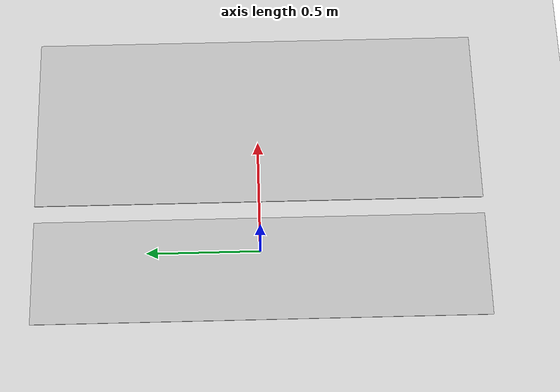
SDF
<?xml version="1.0" ?>
<sdf version="1.4">
  <world name="default">
    <physics type="ode">
      <gravity>0 0 -9.81</gravity>
      <ode>
        <solver>
          <type>quick</type>
          <iters>50</iters>
          <sor>1.4</sor>
        </solver>
        <constraints>
          <cfm>0.0</cfm>
          <erp>0.2</erp>
          <contact_max_correcting_vel>100.0</contact_max_correcting_vel>
          <contact_surface_layer>0.0</contact_surface_layer>
        </constraints>
      </ode>
      <real_time_update_rate>1000</real_time_update_rate>
      <max_step_size>0.001</max_step_size>
    </physics>

    <!-- A global light source -->
    <include>
      <uri>model://sun</uri>
    </include>

    <!-- A ground plane -->
    <include>
      <uri>model://ground_plane</uri>
    </include>

    <!-- Place a Block -->
      <model name = "block_0">
        <pose> -0.07500000000000001 0.0 0.0 0.0 0.0 0.0</pose>
        <static>1</static>
        <link name="box_0_body">
          <inertial>
          <mass>1.0</mass>
          <inertia>
            <ixx>1.0</ixx>
            <ixy>0.0</ixy>
            <ixz>0.0</ixz>
            <iyy>1.0</iyy>
            <iyy>1.0</iyy>
            <iyz>0.0</iyz>
            <izz>1.0</izz>
          </inertia>
        </inertial>
        <collision name="collision">
          <geometry>
            <box>
              <size>0.44999999999999996 2.0 0.01 </size>
            </box>
          </geometry>
        </collision>
        <visual name="visual">
          <geometry>
            <box>
              <size>0.44999999999999996 2.0 0.01 </size>
            </box>
          </geometry>
        </visual>
      </link>
    </model>

    <!-- Place a Block -->
      <model name = "block_1">
        <pose> 0.6125 0.0 0.0 0.0 0.0 0.0</pose>
        <static>1</static>
        <link name="box_1_body">
          <inertial>
          <mass>1.0</mass>
          <inertia>
            <ixx>1.0</ixx>
            <ixy>0.0</ixy>
            <ixz>0.0</ixz>
            <iyy>1.0</iyy>
            <iyy>1.0</iyy>
            <iyz>0.0</iyz>
            <izz>1.0</izz>
          </inertia>
        </inertial>
        <collision name="collision">
          <geometry>
            <box>
              <size>0.775 2.0 0.01 </size>
            </box>
          </geometry>
        </collision>
        <visual name="visual">
          <geometry>
            <box>
              <size>0.775 2.0 0.01 </size>
            </box>
          </geometry>
        </visual>
      </link>
    </model>

  </world>
</sdf>
